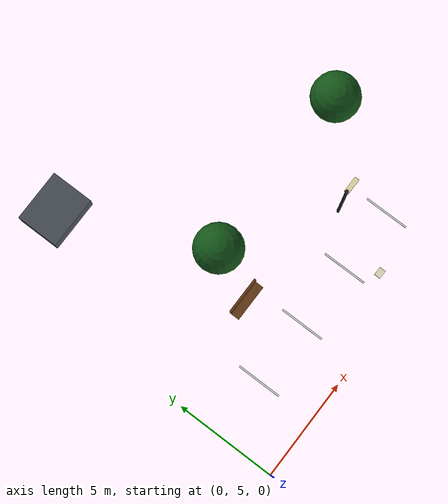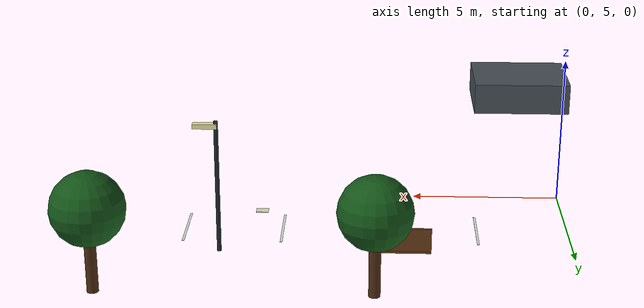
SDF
<sdf version="1.9">
 <world name="sanitation_campus_medium">
  <model name="parking_line_1_0">
   <static>true</static>
   <pose>3.0 7.9 0.013 0 0 0</pose>
   <link name="link">
    <visual name="visual">
     <geometry><box><size>0.08 2.2 0.012</size></box></geometry>
     <material>
      <ambient>0.86 0.88 0.86 1</ambient>
      <diffuse>0.86 0.88 0.86 1</diffuse>
      <specular>0.04 0.04 0.04 1</specular>
     </material>
    </visual>
   </link>
  </model>
  <model name="parking_line_1_1">
   <static>true</static>
   <pose>6.2 7.9 0.013 0 0 0</pose>
   <link name="link">
    <visual name="visual">
     <geometry><box><size>0.08 2.2 0.012</size></box></geometry>
     <material>
      <ambient>0.86 0.88 0.86 1</ambient>
      <diffuse>0.86 0.88 0.86 1</diffuse>
      <specular>0.04 0.04 0.04 1</specular>
     </material>
    </visual>
   </link>
  </model>
  <model name="parking_line_1_2">
   <static>true</static>
   <pose>9.4 7.9 0.013 0 0 0</pose>
   <link name="link">
    <visual name="visual">
     <geometry><box><size>0.08 2.2 0.012</size></box></geometry>
     <material>
      <ambient>0.86 0.88 0.86 1</ambient>
      <diffuse>0.86 0.88 0.86 1</diffuse>
      <specular>0.04 0.04 0.04 1</specular>
     </material>
    </visual>
   </link>
  </model>
  <model name="parking_line_1_3">
   <static>true</static>
   <pose>12.600000000000001 7.9 0.013 0 0 0</pose>
   <link name="link">
    <visual name="visual">
     <geometry><box><size>0.08 2.2 0.012</size></box></geometry>
     <material>
      <ambient>0.86 0.88 0.86 1</ambient>
      <diffuse>0.86 0.88 0.86 1</diffuse>
      <specular>0.04 0.04 0.04 1</specular>
     </material>
    </visual>
   </link>
  </model>
  <model name="roof_unit_north_1">
   <static>true</static>
   <pose>3.0 18.0 8.35 0 0 0</pose>
   <link name="link">
    <collision name="collision"><geometry><box><size>2.2 1.8 0.7</size></box></geometry></collision>
    <visual name="visual">
     <geometry><box><size>2.2 1.8 0.7</size></box></geometry>
     <material>
      <ambient>0.28 0.31 0.34 1</ambient>
      <diffuse>0.28 0.31 0.34 1</diffuse>
      <specular>0.04 0.04 0.04 1</specular>
     </material>
    </visual>
   </link>
  </model>
  <model name="tree_10">
   <static>true</static>
   <pose>6.352941176470587 12.7 0 0 0 0</pose>
   <link name="link">
    <collision name="trunk_collision">
     <geometry><cylinder><radius>0.18</radius><length>2.2</length></cylinder></geometry>
     <pose>0 0 1.1 0 0 0</pose>
    </collision>
    <visual name="trunk">
     <pose>0 0 1.1 0 0 0</pose>
     <geometry><cylinder><radius>0.18</radius><length>2.2</length></cylinder></geometry>
     <material>
      <ambient>0.30 0.17 0.07 1</ambient>
      <diffuse>0.30 0.17 0.07 1</diffuse>
      <specular>0.04 0.04 0.04 1</specular>
     </material>
    </visual>
    <visual name="crown">
     <pose>0 0 2.7 0 0 0</pose>
     <geometry><sphere><radius>1.15</radius></sphere></geometry>
     <material>
      <ambient>0.08 0.34 0.10 1</ambient>
      <diffuse>0.08 0.34 0.10 1</diffuse>
      <specular>0.04 0.04 0.04 1</specular>
     </material>
    </visual>
   </link>
  </model>
  <model name="tree_12">
   <static>true</static>
   <pose>14.82352941176471 12.7 0 0 0 0</pose>
   <link name="link">
    <collision name="trunk_collision">
     <geometry><cylinder><radius>0.18</radius><length>2.2</length></cylinder></geometry>
     <pose>0 0 1.1 0 0 0</pose>
    </collision>
    <visual name="trunk">
     <pose>0 0 1.1 0 0 0</pose>
     <geometry><cylinder><radius>0.18</radius><length>2.2</length></cylinder></geometry>
     <material>
      <ambient>0.30 0.17 0.07 1</ambient>
      <diffuse>0.30 0.17 0.07 1</diffuse>
      <specular>0.04 0.04 0.04 1</specular>
     </material>
    </visual>
    <visual name="crown">
     <pose>0 0 2.7 0 0 0</pose>
     <geometry><sphere><radius>1.15</radius></sphere></geometry>
     <material>
      <ambient>0.08 0.34 0.10 1</ambient>
      <diffuse>0.08 0.34 0.10 1</diffuse>
      <specular>0.04 0.04 0.04 1</specular>
     </material>
    </visual>
   </link>
  </model>
  <model name="lamp_post_02">
   <static>true</static>
   <pose>11.333333333333336 9.7 2.2 0 0 0</pose>
   <link name="link">
    <collision name="collision">
     <geometry><cylinder><radius>0.07</radius><length>4.4</length></cylinder></geometry>
    </collision>
    <visual name="visual">
     <geometry><cylinder><radius>0.07</radius><length>4.4</length></cylinder></geometry>
     <material>
      <ambient>0.12 0.14 0.16 1</ambient>
      <diffuse>0.12 0.14 0.16 1</diffuse>
      <specular>0.04 0.04 0.04 1</specular>
     </material>
    </visual>
   </link>
  </model>
  <model name="lamp_head_02">
   <static>true</static>
   <pose>11.683333333333335 9.7 4.25 0 0 0</pose>
   <link name="link">
    <visual name="visual">
     <geometry><box><size>0.75 0.22 0.16</size></box></geometry>
     <material>
      <ambient>0.92 0.88 0.66 1</ambient>
      <diffuse>0.92 0.88 0.66 1</diffuse>
      <specular>0.04 0.04 0.04 1</specular>
     </material>
    </visual>
   </link>
  </model>
  <model name="bench_seat_1">
   <static>true</static>
   <pose>5.5 10.5 0.55 0 0 0</pose>
   <link name="link">
    <collision name="collision"><geometry><box><size>1.8 0.48 0.12</size></box></geometry></collision>
    <visual name="visual">
     <geometry><box><size>1.8 0.48 0.12</size></box></geometry>
     <material>
      <ambient>0.40 0.23 0.09 1</ambient>
      <diffuse>0.40 0.23 0.09 1</diffuse>
      <specular>0.04 0.04 0.04 1</specular>
     </material>
    </visual>
   </link>
  </model>
  <model name="bench_back_1">
   <static>true</static>
   <pose>5.5 10.72 0.95 0 0 0</pose>
   <link name="link">
    <collision name="collision"><geometry><box><size>1.8 0.1 0.75</size></box></geometry></collision>
    <visual name="visual">
     <geometry><box><size>1.8 0.1 0.75</size></box></geometry>
     <material>
      <ambient>0.40 0.23 0.09 1</ambient>
      <diffuse>0.40 0.23 0.09 1</diffuse>
      <specular>0.04 0.04 0.04 1</specular>
     </material>
    </visual>
   </link>
  </model>
  <model name="target_paper">
   <static>true</static>
   <pose>10.2 6.5 0.025 0 0 0</pose>
   <link name="link">
    <visual name="visual">
     <geometry><box><size>0.42 0.32 0.03</size></box></geometry>
     <material>
      <ambient>0.90 0.88 0.75 1</ambient>
      <diffuse>0.90 0.88 0.75 1</diffuse>
      <specular>0.04 0.04 0.04 1</specular>
     </material>
    </visual>
   </link>
  </model>
 </world>
</sdf>
